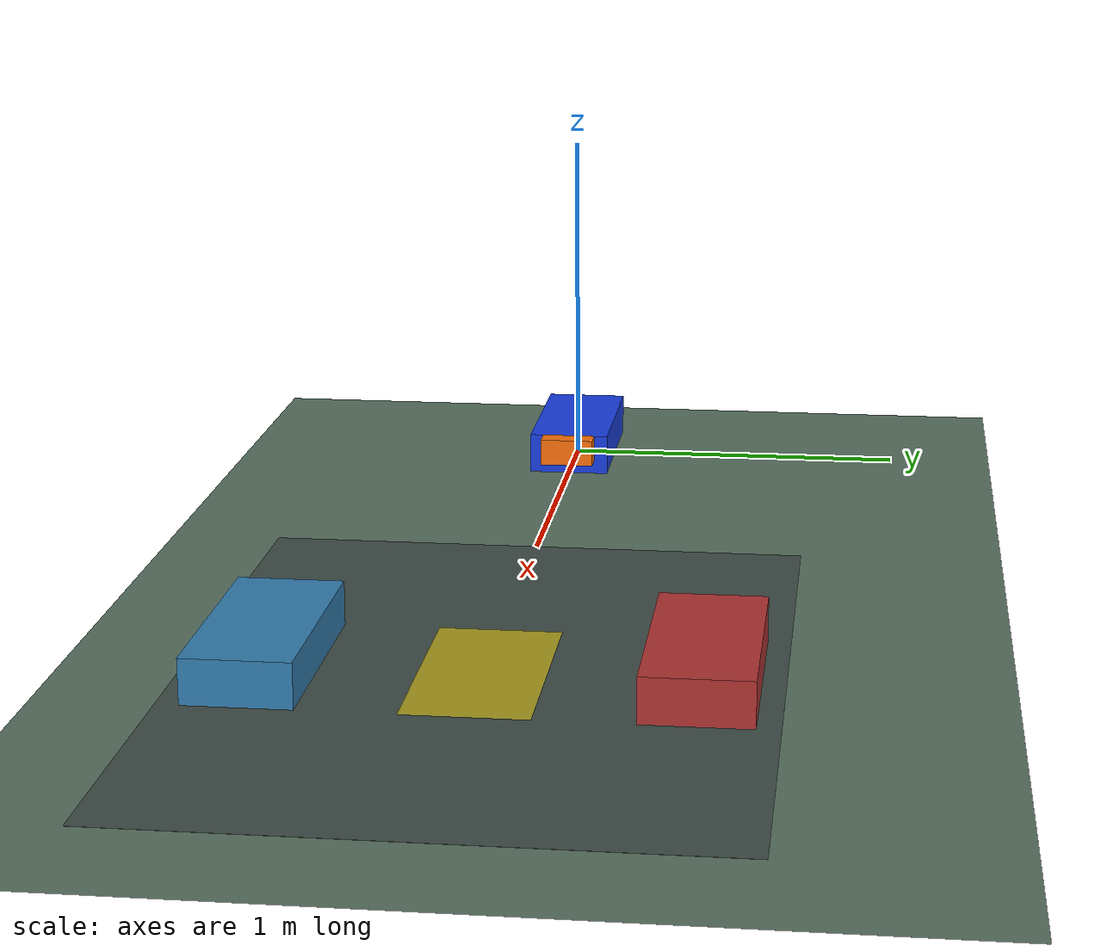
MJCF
<mujoco model="parkpilot_parking">
  <compiler angle="degree" autolimits="true"/>
  <option timestep="0.01" iterations="50" solver="Newton"/>

  <default>
    <geom condim="3" friction="1.0 0.005 0.0001"/>
  </default>

  <statistic center="1.0 0.0 0.0" extent="3.0"/>

  <worldbody>
    <light name="key_light" directional="true" pos="1 -2 4" dir="-0.2 0.4 -1"/>
    <camera name="overview" pos="1.1 -2.7 2.6" xyaxes="1 0 0 0 0.693 0.720"/>

    <geom name="floor" type="plane" size="4 3 0.1" rgba="0.35 0.45 0.38 1"/>
    <geom name="ground_slab" type="box" pos="2.0 0.0 0.00025"
          size="1.0 0.75 0.00025" rgba="0.25 0.30 0.28 1"
          contype="0" conaffinity="0"/>

    <site name="target_slot" type="box" pos="2.0 0.0 0.001"
          size="0.30 0.16 0.001" rgba="0.9 0.8 0.1 0.7"/>

    <geom name="left_parked_car" type="box" pos="2.0 0.55 0.06"
          size="0.30 0.14 0.06" rgba="0.7 0.2 0.2 1"/>
    <geom name="right_parked_car" type="box" pos="2.0 -0.55 0.06"
          size="0.30 0.14 0.06" rgba="0.2 0.5 0.7 1"/>

    <body name="car" pos="0 0 0.06">
      <joint name="car_x" type="slide" axis="1 0 0"/>
      <joint name="car_y" type="slide" axis="0 1 0"/>
      <joint name="car_z_rot" type="hinge" axis="0 0 1"/>

      <geom name="car_chassis" type="box" size="0.25 0.12 0.06" rgba="0.1 0.25 0.9 1"/>
      <geom name="front_marker" type="box" pos="0.28 0 0.02"
            size="0.03 0.08 0.04" rgba="1.0 0.45 0.05 1"/>
    </body>
  </worldbody>

  <actuator>
    <velocity name="drive" joint="car_x" kv="1" ctrlrange="-2 2" ctrllimited="true"/>
    <position name="steer" joint="car_z_rot" kp="5" ctrlrange="-0.6 0.6" ctrllimited="true"/>
  </actuator>
</mujoco>
